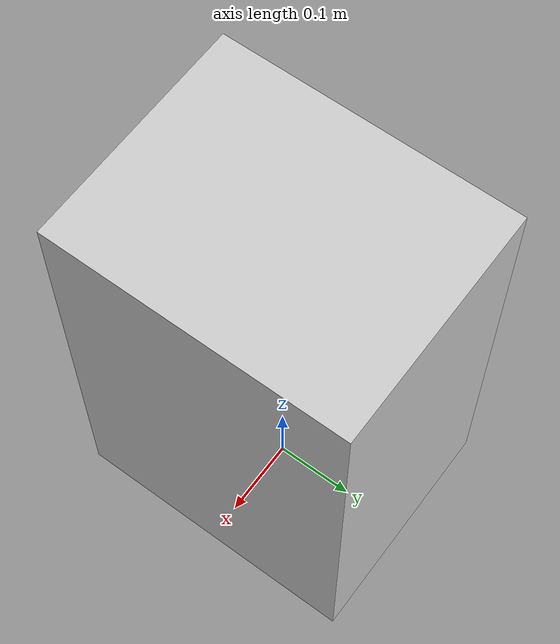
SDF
<?xml version="1.0"?>
<sdf version="1.6">
  <model name="rgo2015/thrashbin">
    <link name="1_link">
      <collision name="1_col">
        <geometry>
          <box>
            <size>0.29 0.365 0.55</size>
          </box>
        </geometry>
      </collision>
      <visual name="1_vis">
        <geometry>
          <box>
            <size>0.29 0.365 0.55</size>
          </box>
        </geometry>
        <material>
          <ambient>0.8 0.8 0.8 1</ambient>
        </material>
      </visual>
      <pose>0 0 0.275 0 0 0</pose>
    </link>
    <static>true</static>
  </model>
</sdf>
